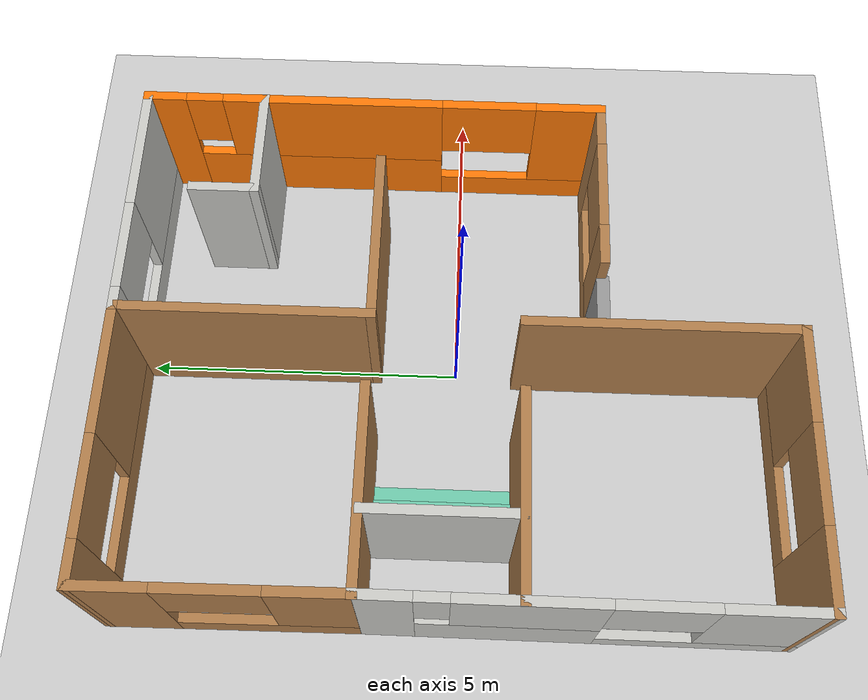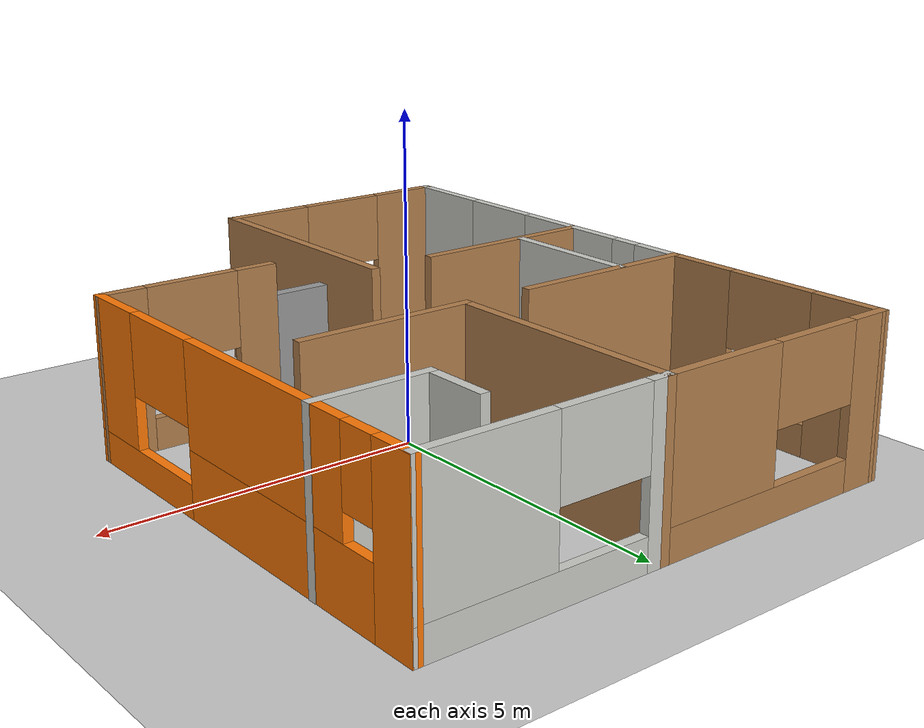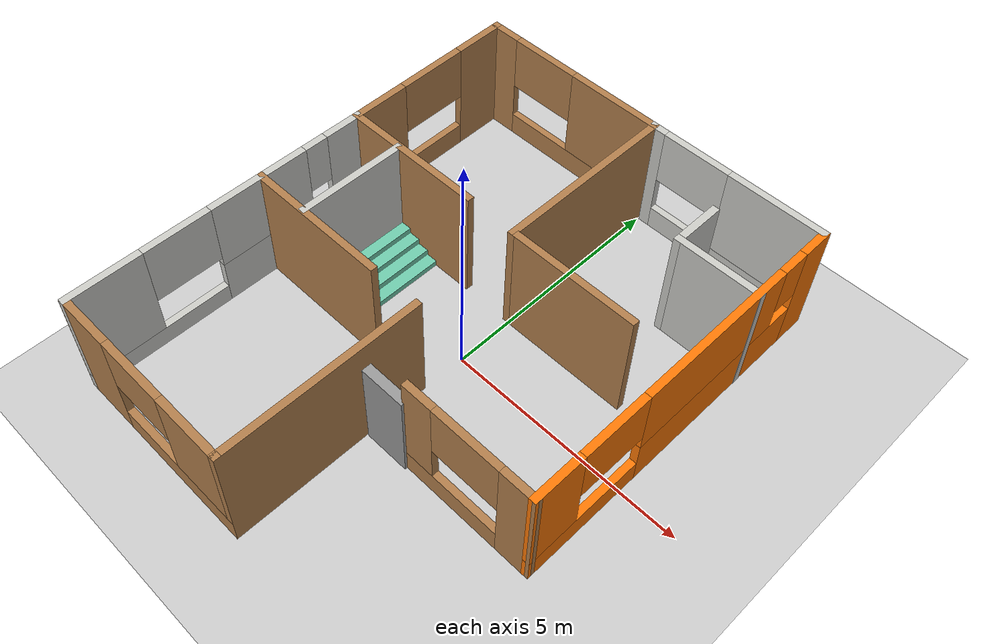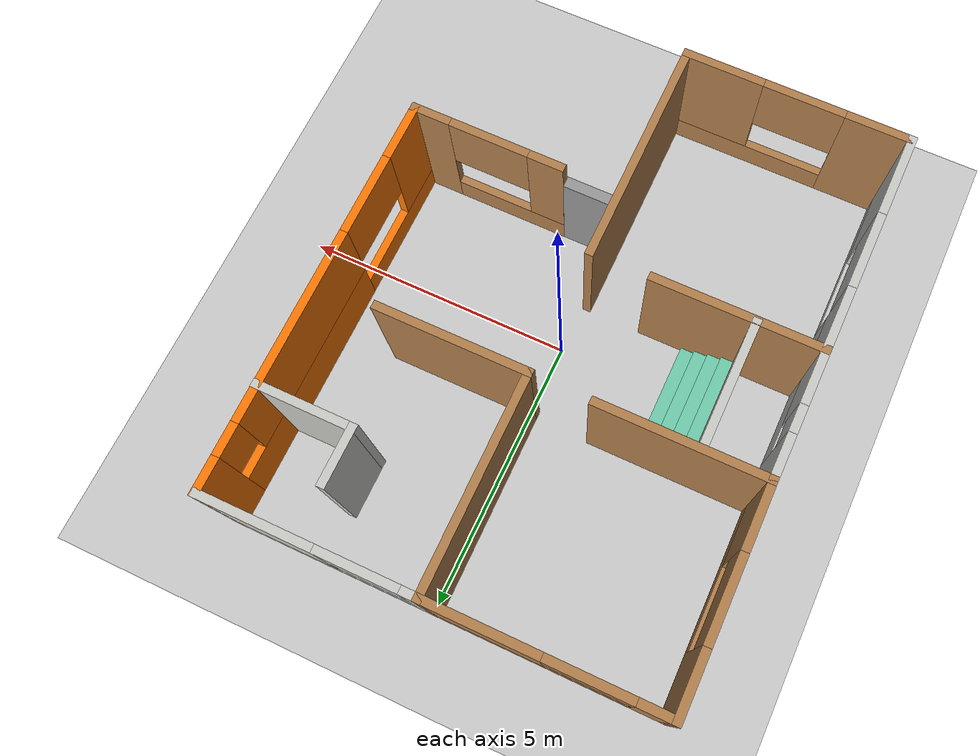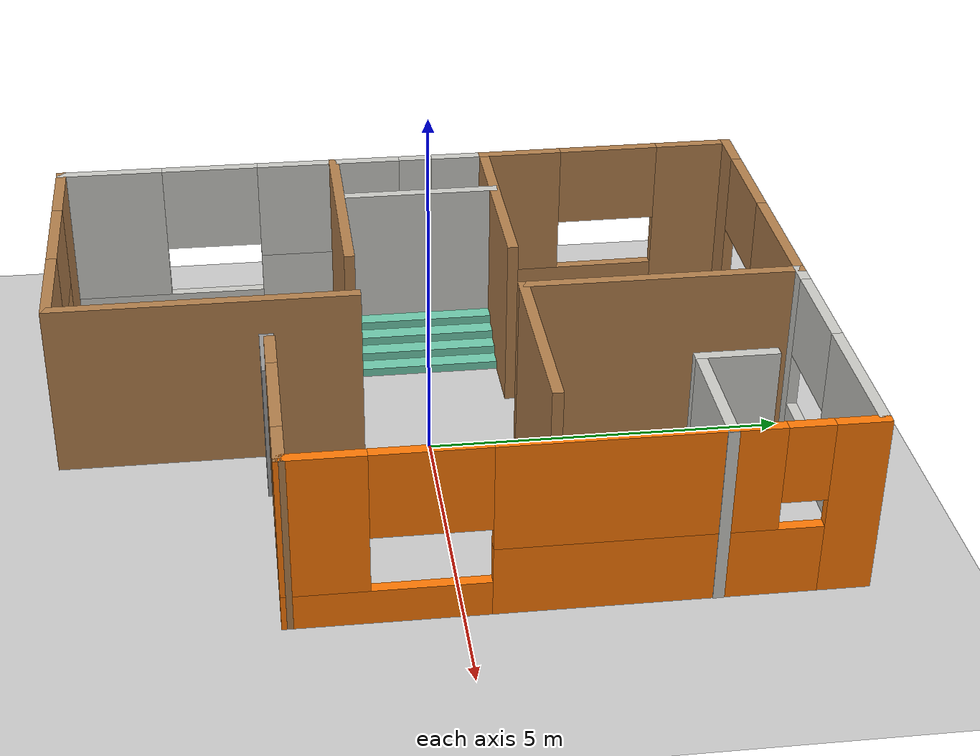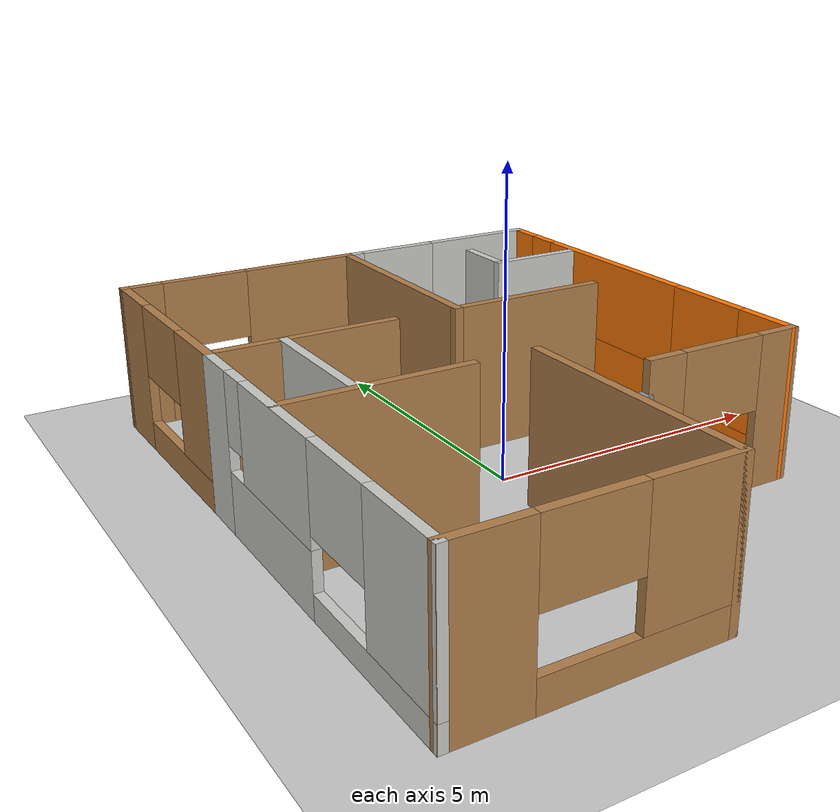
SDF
<sdf version="1.7">
 <world name="default">
  <scene><ambient>0.4 0.4 0.4 1</ambient><background>0.7 0.7 0.7 1</background><shadows>1</shadows></scene>
  <light name="sun" type="directional">
   <pose>0 0 10 0 -0 0</pose>
   <diffuse>0.8 0.8 0.8 1</diffuse>
   <specular>0.2 0.2 0.2 1</specular>
   <attenuation>
    <range>1000</range>
    <constant>0.9</constant>
    <linear>0.01</linear>
    <quadratic>0.001</quadratic>
   </attenuation>
   <direction>-0.5 0.1 -0.9</direction>
   <spot><inner_angle>0</inner_angle><outer_angle>0</outer_angle><falloff>0</falloff></spot>
  </light>
  <model name="ground_plane">
   <static>1</static>
   <link name="link">
    <collision name="collision">
     <geometry><plane><normal>0 0 1</normal><size>100 100</size></plane></geometry>
     <surface>
      <contact><collide_bitmask>65535</collide_bitmask></contact>
      <friction><ode><mu>100</mu><mu2>50</mu2></ode></friction>
     </surface>
    </collision>
    <visual name="visual">
     <cast_shadows>0</cast_shadows>
     <geometry><plane><normal>0 0 1</normal><size>100 100</size></plane></geometry>
     <material>
      <script><uri>file://media/materials/scripts/gazebo.material</uri><name>Gazebo/Grey</name></script>
     </material>
    </visual>
   </link>
  </model>
  <physics type="ode">
   <real_time_update_rate>1000</real_time_update_rate>
   <max_step_size>0.001</max_step_size>
   <real_time_factor>1</real_time_factor>
   <ode>
    <solver>
     <type>quick</type>
     <iters>150</iters>
     <precon_iters>0</precon_iters>
     <sor>1.4</sor>
     <use_dynamic_moi_rescaling>1</use_dynamic_moi_rescaling>
    </solver>
    <constraints>
     <cfm>1e-05</cfm>
     <erp>0.2</erp>
     <contact_max_correcting_vel>2000</contact_max_correcting_vel>
     <contact_surface_layer>0.01</contact_surface_layer>
    </constraints>
   </ode>
  </physics>
  <gravity>0 0 -9.8</gravity>
  <magnetic_field>6e-06 2.3e-05 -4.2e-05</magnetic_field>
  <atmosphere type="adiabatic"/>
  <spherical_coordinates>
   <surface_model>EARTH_WGS84</surface_model>
   <latitude_deg>0</latitude_deg>
   <longitude_deg>0</longitude_deg>
   <elevation>0</elevation>
   <heading_deg>0</heading_deg>
  </spherical_coordinates>
  <model name="Building_1">
   <pose>-0.232797 0.0176 0 0 -0 0</pose>
   <link name="Door_2">
    <collision name="Door_2_Collision">
     <geometry><box><size>0.946 0.2 2</size></box></geometry>
     <pose>0 0 1 0 -0 0</pose>
    </collision>
    <visual name="Door_2_Visual">
     <pose>0 0 1 0 -0 0</pose>
     <geometry><box><size>0.946 0.2 2</size></box></geometry>
     <material>
      <script><uri>file://media/materials/scripts/gazebo.material</uri><name>Gazebo/Grey</name></script>
     </material>
    </visual>
    <pose>0.711317 -2.21727 0 0 -0 0</pose>
   </link>
   <link name="Stairs_2">
    <visual name="Stairs_2_Visual_0">
     <pose>-1.85966 0.13696 0.0625 0 -0 -1.5708</pose>
     <geometry><box><size>2.29011 0.243245 0.125</size></box></geometry>
     <material>
      <script><uri>file://media/materials/scripts/gazebo.material</uri><name>Gazebo/Grey</name></script>
      <ambient>0.435294 0.796078 0.67451 1</ambient>
     </material>
     <meta><layer>0</layer></meta>
    </visual>
    <collision name="Stairs_2_Collision_0">
     <geometry><box><size>2.29011 0.243245 0.125</size></box></geometry>
     <pose>-1.85966 0.13696 0.0625 0 -0 -1.5708</pose>
    </collision>
    <visual name="Stairs_2_Visual_1">
     <pose>-2.1029 0.13696 0.1875 0 -0 -1.5708</pose>
     <geometry><box><size>2.29011 0.243245 0.125</size></box></geometry>
     <material>
      <script><uri>file://media/materials/scripts/gazebo.material</uri><name>Gazebo/Grey</name></script>
      <ambient>0.435294 0.796078 0.67451 1</ambient>
     </material>
     <meta><layer>0</layer></meta>
    </visual>
    <collision name="Stairs_2_Collision_1">
     <geometry><box><size>2.29011 0.243245 0.125</size></box></geometry>
     <pose>-2.1029 0.13696 0.1875 0 -0 -1.5708</pose>
    </collision>
    <visual name="Stairs_2_Visual_2">
     <pose>-2.34615 0.13696 0.3125 0 -0 -1.5708</pose>
     <geometry><box><size>2.29011 0.243245 0.125</size></box></geometry>
     <material>
      <script><uri>file://media/materials/scripts/gazebo.material</uri><name>Gazebo/Grey</name></script>
      <ambient>0.435294 0.796078 0.67451 1</ambient>
     </material>
     <meta><layer>0</layer></meta>
    </visual>
    <collision name="Stairs_2_Collision_2">
     <geometry><box><size>2.29011 0.243245 0.125</size></box></geometry>
     <pose>-2.34615 0.13696 0.3125 0 -0 -1.5708</pose>
    </collision>
    <visual name="Stairs_2_Visual_3">
     <pose>-2.5894 0.13696 0.4375 0 -0 -1.5708</pose>
     <geometry><box><size>2.29011 0.243245 0.125</size></box></geometry>
     <material>
      <script><uri>file://media/materials/scripts/gazebo.material</uri><name>Gazebo/Grey</name></script>
      <ambient>0.435294 0.796078 0.67451 1</ambient>
     </material>
     <meta><layer>0</layer></meta>
    </visual>
    <collision name="Stairs_2_Collision_3">
     <geometry><box><size>2.29011 0.243245 0.125</size></box></geometry>
     <pose>-2.5894 0.13696 0.4375 0 -0 -1.5708</pose>
    </collision>
   </link>
   <link name="Wall_10">
    <pose>-3.94836 3.19688 0 0 -0 -1.56397</pose>
    <visual name="Wall_10_Visual_0">
     <pose>-1.38335 0 1.25 0 -0 0</pose>
     <geometry><box><size>1.18938 0.15 2.5</size></box></geometry>
     <material>
      <script><uri>file://media/materials/scripts/gazebo.material</uri><name>Gazebo/Wood</name></script>
      <ambient>0.996078 0.47451 0.0196078 1</ambient>
     </material>
     <meta><layer>0</layer></meta>
    </visual>
    <collision name="Wall_10_Collision_0">
     <geometry><box><size>1.18938 0.15 2.5</size></box></geometry>
     <pose>-1.38335 0 1.25 0 -0 0</pose>
    </collision>
    <visual name="Wall_10_Visual_1">
     <pose>0.594692 0 0.25 0 -0 0</pose>
     <geometry><box><size>2.76671 0.15 0.5</size></box></geometry>
     <material>
      <script><uri>file://media/materials/scripts/gazebo.material</uri><name>Gazebo/Wood</name></script>
      <ambient>0.996078 0.47451 0.0196078 1</ambient>
     </material>
     <meta><layer>0</layer></meta>
    </visual>
    <collision name="Wall_10_Collision_1">
     <geometry><box><size>2.76671 0.15 0.5</size></box></geometry>
     <pose>0.594692 0 0.25 0 -0 0</pose>
    </collision>
    <visual name="Wall_10_Visual_2">
     <pose>1.34665 0 1.5 0 -0 0</pose>
     <geometry><box><size>1.26278 0.15 2</size></box></geometry>
     <material>
      <script><uri>file://media/materials/scripts/gazebo.material</uri><name>Gazebo/Wood</name></script>
      <ambient>0.996078 0.47451 0.0196078 1</ambient>
     </material>
     <meta><layer>0</layer></meta>
    </visual>
    <collision name="Wall_10_Collision_2">
     <geometry><box><size>1.26278 0.15 2</size></box></geometry>
     <pose>1.34665 0 1.5 0 -0 0</pose>
    </collision>
    <visual name="Wall_10_Visual_3">
     <pose>-0.0367 0 1.9 0 -0 0</pose>
     <geometry><box><size>1.50392 0.15 1.2</size></box></geometry>
     <material>
      <script><uri>file://media/materials/scripts/gazebo.material</uri><name>Gazebo/Wood</name></script>
      <ambient>0.996078 0.47451 0.0196078 1</ambient>
     </material>
     <meta><layer>0</layer></meta>
    </visual>
    <collision name="Wall_10_Collision_3">
     <geometry><box><size>1.50392 0.15 1.2</size></box></geometry>
     <pose>-0.0367 0 1.9 0 -0 0</pose>
    </collision>
   </link>
   <link name="Wall_11">
    <pose>-3.94841 -1.90297 0 0 -0 -1.57488</pose>
    <visual name="Wall_11_Visual_0">
     <pose>-2.83034 0 1.25 0 -0 0</pose>
     <geometry><box><size>0.883609 0.15 2.5</size></box></geometry>
     <material>
      <script><uri>file://media/materials/scripts/gazebo.material</uri><name>Gazebo/CeilingTiled</name></script>
      <ambient>0.996078 0.47451 0.0196078 1</ambient>
     </material>
     <meta><layer>0</layer></meta>
    </visual>
    <collision name="Wall_11_Collision_0">
     <geometry><box><size>0.883609 0.15 2.5</size></box></geometry>
     <pose>-2.83034 0 1.25 0 -0 0</pose>
    </collision>
    <visual name="Wall_11_Visual_1">
     <pose>-1.05993 0 0.5 0 -0 0</pose>
     <geometry><box><size>2.65722 0.15 1</size></box></geometry>
     <material>
      <script><uri>file://media/materials/scripts/gazebo.material</uri><name>Gazebo/CeilingTiled</name></script>
      <ambient>0.996078 0.47451 0.0196078 1</ambient>
     </material>
     <meta><layer>0</layer></meta>
    </visual>
    <collision name="Wall_11_Collision_1">
     <geometry><box><size>2.65722 0.15 1</size></box></geometry>
     <pose>-1.05993 0 0.5 0 -0 0</pose>
    </collision>
    <visual name="Wall_11_Visual_2">
     <pose>1.77042 0 0.2 0 -0 0</pose>
     <geometry><box><size>3.00346 0.15 0.4</size></box></geometry>
     <material>
      <script><uri>file://media/materials/scripts/gazebo.material</uri><name>Gazebo/CeilingTiled</name></script>
      <ambient>0.996078 0.47451 0.0196078 1</ambient>
     </material>
     <meta><layer>0</layer></meta>
    </visual>
    <collision name="Wall_11_Collision_2">
     <geometry><box><size>3.00346 0.15 0.4</size></box></geometry>
     <pose>1.77042 0 0.2 0 -0 0</pose>
    </collision>
    <visual name="Wall_11_Visual_3">
     <pose>2.48542 0 1.45 0 -0 0</pose>
     <geometry><box><size>1.57346 0.15 2.1</size></box></geometry>
     <material>
      <script><uri>file://media/materials/scripts/gazebo.material</uri><name>Gazebo/CeilingTiled</name></script>
      <ambient>0.996078 0.47451 0.0196078 1</ambient>
     </material>
     <meta><layer>0</layer></meta>
    </visual>
    <collision name="Wall_11_Collision_3">
     <geometry><box><size>1.57346 0.15 2.1</size></box></geometry>
     <pose>2.48542 0 1.45 0 -0 0</pose>
    </collision>
    <visual name="Wall_11_Visual_4">
     <pose>-0.809925 0 1.75 0 -0 0</pose>
     <geometry><box><size>2.15722 0.15 1.5</size></box></geometry>
     <material>
      <script><uri>file://media/materials/scripts/gazebo.material</uri><name>Gazebo/CeilingTiled</name></script>
      <ambient>0.996078 0.47451 0.0196078 1</ambient>
     </material>
     <meta><layer>0</layer></meta>
    </visual>
    <collision name="Wall_11_Collision_4">
     <geometry><box><size>2.15722 0.15 1.5</size></box></geometry>
     <pose>-0.809925 0 1.75 0 -0 0</pose>
    </collision>
    <visual name="Wall_11_Visual_5">
     <pose>0.983687 0 1.85 0 -0 0</pose>
     <geometry><box><size>1.43 0.15 1.3</size></box></geometry>
     <material>
      <script><uri>file://media/materials/scripts/gazebo.material</uri><name>Gazebo/CeilingTiled</name></script>
      <ambient>0.996078 0.47451 0.0196078 1</ambient>
     </material>
     <meta><layer>0</layer></meta>
    </visual>
    <collision name="Wall_11_Collision_5">
     <geometry><box><size>1.43 0.15 1.3</size></box></geometry>
     <pose>0.983687 0 1.85 0 -0 0</pose>
    </collision>
    <visual name="Wall_11_Visual_6">
     <pose>-2.13854 0 1.95 0 -0 0</pose>
     <geometry><box><size>0.5 0.15 1.1</size></box></geometry>
     <material>
      <script><uri>file://media/materials/scripts/gazebo.material</uri><name>Gazebo/CeilingTiled</name></script>
      <ambient>0.996078 0.47451 0.0196078 1</ambient>
     </material>
     <meta><layer>0</layer></meta>
    </visual>
    <collision name="Wall_11_Collision_6">
     <geometry><box><size>0.5 0.15 1.1</size></box></geometry>
     <pose>-2.13854 0 1.95 0 -0 0</pose>
    </collision>
   </link>
   <link name="Wall_12">
    <pose>-1.91146 -5.09982 0 0 -0 0</pose>
    <visual name="Wall_12_Visual_0">
     <pose>-1.49847 0 1.25 0 -0 0</pose>
     <geometry><box><size>1.25307 0.15 2.5</size></box></geometry>
     <material>
      <script><uri>file://media/materials/scripts/gazebo.material</uri><name>Gazebo/Wood</name></script>
      <ambient>0.996078 0.47451 0.0196078 1</ambient>
     </material>
     <meta><layer>0</layer></meta>
    </visual>
    <collision name="Wall_12_Collision_0">
     <geometry><box><size>1.25307 0.15 2.5</size></box></geometry>
     <pose>-1.49847 0 1.25 0 -0 0</pose>
    </collision>
    <visual name="Wall_12_Visual_1">
     <pose>0.626533 0 0.25 0 -0 0</pose>
     <geometry><box><size>2.99693 0.15 0.5</size></box></geometry>
     <material>
      <script><uri>file://media/materials/scripts/gazebo.material</uri><name>Gazebo/Wood</name></script>
      <ambient>0.996078 0.47451 0.0196078 1</ambient>
     </material>
     <meta><layer>0</layer></meta>
    </visual>
    <collision name="Wall_12_Collision_1">
     <geometry><box><size>2.99693 0.15 0.5</size></box></geometry>
     <pose>0.626533 0 0.25 0 -0 0</pose>
    </collision>
    <visual name="Wall_12_Visual_2">
     <pose>1.36953 0 1.5 0 -0 0</pose>
     <geometry><box><size>1.51095 0.15 2</size></box></geometry>
     <material>
      <script><uri>file://media/materials/scripts/gazebo.material</uri><name>Gazebo/Wood</name></script>
      <ambient>0.996078 0.47451 0.0196078 1</ambient>
     </material>
     <meta><layer>0</layer></meta>
    </visual>
    <collision name="Wall_12_Collision_2">
     <geometry><box><size>1.51095 0.15 2</size></box></geometry>
     <pose>1.36953 0 1.5 0 -0 0</pose>
    </collision>
    <visual name="Wall_12_Visual_3">
     <pose>-0.128941 0 1.9 0 -0 0</pose>
     <geometry><box><size>1.48599 0.15 1.2</size></box></geometry>
     <material>
      <script><uri>file://media/materials/scripts/gazebo.material</uri><name>Gazebo/Wood</name></script>
      <ambient>0.996078 0.47451 0.0196078 1</ambient>
     </material>
     <meta><layer>0</layer></meta>
    </visual>
    <collision name="Wall_12_Collision_3">
     <geometry><box><size>1.48599 0.15 1.2</size></box></geometry>
     <pose>-0.128941 0 1.9 0 -0 0</pose>
    </collision>
   </link>
   <link name="Wall_13">
    <collision name="Wall_13_Collision">
     <geometry><box><size>4.25 0.15 2.5</size></box></geometry>
     <pose>0 0 1.25 0 -0 0</pose>
    </collision>
    <visual name="Wall_13_Visual">
     <pose>0 0 1.25 0 -0 0</pose>
     <geometry><box><size>4.25 0.15 2.5</size></box></geometry>
     <material>
      <script><uri>file://media/materials/scripts/gazebo.material</uri><name>Gazebo/Wood</name></script>
      <ambient>0.996078 0.47451 0.0196078 1</ambient>
     </material>
     <meta><layer>0</layer></meta>
    </visual>
    <pose>0.138544 -3.04982 0 0 -0 1.5708</pose>
   </link>
   <link name="Wall_15">
    <collision name="Wall_15_Collision">
     <geometry><box><size>3.12449 0.15 2.5</size></box></geometry>
     <pose>0 0 1.25 0 -0 0</pose>
    </collision>
    <visual name="Wall_15_Visual">
     <pose>0 0 1.25 0 -0 0</pose>
     <geometry><box><size>3.12449 0.15 2.5</size></box></geometry>
     <material>
      <script><uri>file://media/materials/scripts/gazebo.material</uri><name>Gazebo/Wood</name></script>
      <ambient>0.996078 0.47451 0.0196078 1</ambient>
     </material>
     <meta><layer>0</layer></meta>
    </visual>
    <pose>-2.44812 1.29374 0 0 -0 -9.2e-05</pose>
   </link>
   <link name="Wall_17">
    <collision name="Wall_17_Collision">
     <geometry><box><size>2.83504 0.15 2.5</size></box></geometry>
     <pose>0 0 1.25 0 -0 0</pose>
    </collision>
    <visual name="Wall_17_Visual">
     <pose>0 0 1.25 0 -0 0</pose>
     <geometry><box><size>2.83504 0.15 2.5</size></box></geometry>
     <material>
      <script><uri>file://media/materials/scripts/gazebo.material</uri><name>Gazebo/Wood</name></script>
      <ambient>0.996078 0.47451 0.0196078 1</ambient>
     </material>
     <meta><layer>0</layer></meta>
    </visual>
    <pose>1.51797 1.27963 0 0 -0 -3.14103</pose>
   </link>
   <link name="Wall_18">
    <collision name="Wall_18_Collision">
     <geometry><box><size>3.97135 0.15 2.5</size></box></geometry>
     <pose>0 0 1.25 0 -0 0</pose>
    </collision>
    <visual name="Wall_18_Visual">
     <pose>0 0 1.25 0 -0 0</pose>
     <geometry><box><size>3.97135 0.15 2.5</size></box></geometry>
     <material>
      <script><uri>file://media/materials/scripts/gazebo.material</uri><name>Gazebo/Wood</name></script>
      <ambient>0.996078 0.47451 0.0196078 1</ambient>
     </material>
     <meta><layer>0</layer></meta>
    </visual>
    <pose>0.175637 3.18938 0 0 -0 1.5708</pose>
   </link>
   <link name="Wall_20">
    <collision name="Wall_20_Collision">
     <geometry><box><size>1.83902 0.15 2.5</size></box></geometry>
     <pose>0 0 1.25 0 -0 0</pose>
    </collision>
    <visual name="Wall_20_Visual">
     <pose>0 0 1.25 0 -0 0</pose>
     <geometry><box><size>1.83902 0.15 2.5</size></box></geometry>
     <material>
      <script><uri>file://media/materials/scripts/gazebo.material</uri><name>Gazebo/CeilingTiled</name></script>
      <ambient>0.996078 0.47451 0.0196078 1</ambient>
     </material>
     <meta><layer>0</layer></meta>
    </visual>
    <pose>3.11736 3.21456 0 0 -0 3.14159</pose>
   </link>
   <link name="Wall_21">
    <collision name="Wall_21_Collision">
     <geometry><box><size>1.11082 0.15 2.5</size></box></geometry>
     <pose>0 0 1.25 0 -0 0</pose>
    </collision>
    <visual name="Wall_21_Visual">
     <pose>0 0 1.25 0 -0 0</pose>
     <geometry><box><size>1.11082 0.15 2.5</size></box></geometry>
     <material>
      <script><uri>file://media/materials/scripts/gazebo.material</uri><name>Gazebo/CeilingTiled</name></script>
      <ambient>0.996078 0.47451 0.0196078 1</ambient>
     </material>
     <meta><layer>0</layer></meta>
    </visual>
    <pose>2.27285 3.69497 0 0 -0 1.5708</pose>
   </link>
   <link name="Wall_23">
    <collision name="Wall_23_Collision">
     <geometry><box><size>3.1252 0.15 2.5</size></box></geometry>
     <pose>0 0 1.25 0 -0 0</pose>
    </collision>
    <visual name="Wall_23_Visual">
     <pose>0 0 1.25 0 -0 0</pose>
     <geometry><box><size>3.1252 0.15 2.5</size></box></geometry>
     <material>
      <script><uri>file://media/materials/scripts/gazebo.material</uri><name>Gazebo/Wood</name></script>
      <ambient>0.996078 0.47451 0.0196078 1</ambient>
     </material>
     <meta><layer>0</layer></meta>
    </visual>
    <pose>-2.45307 -1.0034 0 0 -0 0.001625</pose>
   </link>
   <link name="Wall_25">
    <collision name="Wall_25_Collision">
     <geometry><box><size>2.38442 0.15 2.5</size></box></geometry>
     <pose>0 0 1.25 0 -0 0</pose>
    </collision>
    <visual name="Wall_25_Visual">
     <pose>0 0 1.25 0 -0 0</pose>
     <geometry><box><size>2.38442 0.15 2.5</size></box></geometry>
     <material>
      <script><uri>file://media/materials/scripts/gazebo.material</uri><name>Gazebo/CeilingTiled</name></script>
      <ambient>0.996078 0.47451 0.0196078 1</ambient>
     </material>
     <meta><layer>0</layer></meta>
    </visual>
    <pose>-2.76936 0.143883 0 0 -0 -1.5708</pose>
   </link>
   <link name="Wall_5">
    <pose>-1.89286 5.09988 0 0 -0 0</pose>
    <visual name="Wall_5_Visual_0">
     <pose>-1.79142 0 1.25 0 -0 0</pose>
     <geometry><box><size>0.704245 0.15 2.5</size></box></geometry>
     <material>
      <script><uri>file://media/materials/scripts/gazebo.material</uri><name>Gazebo/Wood</name></script>
      <ambient>0.996078 0.47451 0.0196078 1</ambient>
     </material>
     <meta><layer>0</layer></meta>
    </visual>
    <collision name="Wall_5_Collision_0">
     <geometry><box><size>0.704245 0.15 2.5</size></box></geometry>
     <pose>-1.79142 0 1.25 0 -0 0</pose>
    </collision>
    <visual name="Wall_5_Visual_1">
     <pose>0.352122 0 0.25 0 -0 0</pose>
     <geometry><box><size>3.58285 0.15 0.5</size></box></geometry>
     <material>
      <script><uri>file://media/materials/scripts/gazebo.material</uri><name>Gazebo/Wood</name></script>
      <ambient>0.996078 0.47451 0.0196078 1</ambient>
     </material>
     <meta><layer>0</layer></meta>
    </visual>
    <collision name="Wall_5_Collision_1">
     <geometry><box><size>3.58285 0.15 0.5</size></box></geometry>
     <pose>0.352122 0 0.25 0 -0 0</pose>
    </collision>
    <visual name="Wall_5_Visual_2">
     <pose>1.10307 0 1.5 0 -0 0</pose>
     <geometry><box><size>2.08095 0.15 2</size></box></geometry>
     <material>
      <script><uri>file://media/materials/scripts/gazebo.material</uri><name>Gazebo/Wood</name></script>
      <ambient>0.996078 0.47451 0.0196078 1</ambient>
     </material>
     <meta><layer>0</layer></meta>
    </visual>
    <collision name="Wall_5_Collision_2">
     <geometry><box><size>2.08095 0.15 2</size></box></geometry>
     <pose>1.10307 0 1.5 0 -0 0</pose>
    </collision>
    <visual name="Wall_5_Visual_3">
     <pose>-0.688351 0 1.9 0 -0 0</pose>
     <geometry><box><size>1.5019 0.15 1.2</size></box></geometry>
     <material>
      <script><uri>file://media/materials/scripts/gazebo.material</uri><name>Gazebo/Wood</name></script>
      <ambient>0.996078 0.47451 0.0196078 1</ambient>
     </material>
     <meta><layer>0</layer></meta>
    </visual>
    <collision name="Wall_5_Collision_3">
     <geometry><box><size>1.5019 0.15 1.2</size></box></geometry>
     <pose>-0.688351 0 1.9 0 -0 0</pose>
    </collision>
   </link>
   <link name="Wall_6">
    <pose>2.05895 5.10003 0 0 -0 7.8e-05</pose>
    <visual name="Wall_6_Visual_0">
     <pose>-1.76877 0 1.25 0 -0 0</pose>
     <geometry><box><size>0.379085 0.15 2.5</size></box></geometry>
     <material>
      <script><uri>file://media/materials/scripts/gazebo.material</uri><name>Gazebo/CeilingTiled</name></script>
      <ambient>0.996078 0.47451 0.0196078 1</ambient>
     </material>
     <meta><layer>0</layer></meta>
    </visual>
    <collision name="Wall_6_Collision_0">
     <geometry><box><size>0.379085 0.15 2.5</size></box></geometry>
     <pose>-1.76877 0 1.25 0 -0 0</pose>
    </collision>
    <visual name="Wall_6_Visual_1">
     <pose>0.189542 0 0.25 0 -0 0</pose>
     <geometry><box><size>3.53754 0.15 0.5</size></box></geometry>
     <material>
      <script><uri>file://media/materials/scripts/gazebo.material</uri><name>Gazebo/CeilingTiled</name></script>
      <ambient>0.996078 0.47451 0.0196078 1</ambient>
     </material>
     <meta><layer>0</layer></meta>
    </visual>
    <collision name="Wall_6_Collision_1">
     <geometry><box><size>3.53754 0.15 0.5</size></box></geometry>
     <pose>0.189542 0 0.25 0 -0 0</pose>
    </collision>
    <visual name="Wall_6_Visual_2">
     <pose>0.917476 0 1.5 0 -0 0</pose>
     <geometry><box><size>2.08167 0.15 2</size></box></geometry>
     <material>
      <script><uri>file://media/materials/scripts/gazebo.material</uri><name>Gazebo/CeilingTiled</name></script>
      <ambient>0.996078 0.47451 0.0196078 1</ambient>
     </material>
     <meta><layer>0</layer></meta>
    </visual>
    <collision name="Wall_6_Collision_2">
     <geometry><box><size>2.08167 0.15 2</size></box></geometry>
     <pose>0.917476 0 1.5 0 -0 0</pose>
    </collision>
    <visual name="Wall_6_Visual_3">
     <pose>-0.851292 0 1.9 0 -0 0</pose>
     <geometry><box><size>1.45587 0.15 1.2</size></box></geometry>
     <material>
      <script><uri>file://media/materials/scripts/gazebo.material</uri><name>Gazebo/CeilingTiled</name></script>
      <ambient>0.996078 0.47451 0.0196078 1</ambient>
     </material>
     <meta><layer>0</layer></meta>
    </visual>
    <collision name="Wall_6_Collision_3">
     <geometry><box><size>1.45587 0.15 1.2</size></box></geometry>
     <pose>-0.851292 0 1.9 0 -0 0</pose>
    </collision>
   </link>
   <link name="Wall_7">
    <pose>3.95222 1.45148 0 0 -0 -1.57169</pose>
    <visual name="Wall_7_Visual_0">
     <pose>-3.37546 0 1.25 0 -0 0</pose>
     <geometry><box><size>0.696483 0.15 2.5</size></box></geometry>
     <material>
      <script><uri>file://media/materials/scripts/gazebo.material</uri><name>Gazebo/Grey</name></script>
      <ambient>0.996078 0.47451 0.0196078 1</ambient>
     </material>
     <meta><layer>0</layer></meta>
    </visual>
    <collision name="Wall_7_Collision_0">
     <geometry><box><size>0.696483 0.15 2.5</size></box></geometry>
     <pose>-3.37546 0 1.25 0 -0 0</pose>
    </collision>
    <visual name="Wall_7_Visual_1">
     <pose>-0.960317 0 0.5 0 -0 0</pose>
     <geometry><box><size>4.1338 0.15 1</size></box></geometry>
     <material>
      <script><uri>file://media/materials/scripts/gazebo.material</uri><name>Gazebo/Grey</name></script>
      <ambient>0.996078 0.47451 0.0196078 1</ambient>
     </material>
     <meta><layer>0</layer></meta>
    </visual>
    <collision name="Wall_7_Collision_1">
     <geometry><box><size>4.1338 0.15 1</size></box></geometry>
     <pose>-0.960317 0 0.5 0 -0 0</pose>
    </collision>
    <visual name="Wall_7_Visual_2">
     <pose>2.41514 0 0.25 0 -0 0</pose>
     <geometry><box><size>2.61712 0.15 0.5</size></box></geometry>
     <material>
      <script><uri>file://media/materials/scripts/gazebo.material</uri><name>Gazebo/Grey</name></script>
      <ambient>0.996078 0.47451 0.0196078 1</ambient>
     </material>
     <meta><layer>0</layer></meta>
    </visual>
    <collision name="Wall_7_Collision_2">
     <geometry><box><size>2.61712 0.15 0.5</size></box></geometry>
     <pose>2.41514 0 0.25 0 -0 0</pose>
    </collision>
    <visual name="Wall_7_Visual_3">
     <pose>3.16678 0 1.5 0 -0 0</pose>
     <geometry><box><size>1.11384 0.15 2</size></box></geometry>
     <material>
      <script><uri>file://media/materials/scripts/gazebo.material</uri><name>Gazebo/Grey</name></script>
      <ambient>0.996078 0.47451 0.0196078 1</ambient>
     </material>
     <meta><layer>0</layer></meta>
    </visual>
    <collision name="Wall_7_Collision_3">
     <geometry><box><size>1.11384 0.15 2</size></box></geometry>
     <pose>3.16678 0 1.5 0 -0 0</pose>
    </collision>
    <visual name="Wall_7_Visual_4">
     <pose>-0.665817 0 1.75 0 -0 0</pose>
     <geometry><box><size>3.5448 0.15 1.5</size></box></geometry>
     <material>
      <script><uri>file://media/materials/scripts/gazebo.material</uri><name>Gazebo/Grey</name></script>
      <ambient>0.996078 0.47451 0.0196078 1</ambient>
     </material>
     <meta><layer>0</layer></meta>
    </visual>
    <collision name="Wall_7_Collision_4">
     <geometry><box><size>3.5448 0.15 1.5</size></box></geometry>
     <pose>-0.665817 0 1.75 0 -0 0</pose>
    </collision>
    <visual name="Wall_7_Visual_5">
     <pose>1.85822 0 1.9 0 -0 0</pose>
     <geometry><box><size>1.50328 0.15 1.2</size></box></geometry>
     <material>
      <script><uri>file://media/materials/scripts/gazebo.material</uri><name>Gazebo/Grey</name></script>
      <ambient>0.996078 0.47451 0.0196078 1</ambient>
     </material>
     <meta><layer>0</layer></meta>
    </visual>
    <collision name="Wall_7_Collision_5">
     <geometry><box><size>1.50328 0.15 1.2</size></box></geometry>
     <pose>1.85822 0 1.9 0 -0 0</pose>
    </collision>
    <visual name="Wall_7_Visual_6">
     <pose>-2.73272 0 1.95 0 -0 0</pose>
     <geometry><box><size>0.589 0.15 1.1</size></box></geometry>
     <material>
      <script><uri>file://media/materials/scripts/gazebo.material</uri><name>Gazebo/Grey</name></script>
      <ambient>0.996078 0.47451 0.0196078 1</ambient>
     </material>
     <meta><layer>0</layer></meta>
    </visual>
    <collision name="Wall_7_Collision_6">
     <geometry><box><size>0.589 0.15 1.1</size></box></geometry>
     <pose>-2.73272 0 1.95 0 -0 0</pose>
    </collision>
   </link>
   <link name="Wall_8">
    <pose>2.58197 -2.19385 0 0 -0 3.13913</pose>
    <visual name="Wall_8_Visual_0">
     <pose>-1.06812 0 1.25 0 -0 0</pose>
     <geometry><box><size>0.747768 0.15 2.5</size></box></geometry>
     <material>
      <script><uri>file://media/materials/scripts/gazebo.material</uri><name>Gazebo/Wood</name></script>
      <ambient>0.996078 0.47451 0.0196078 1</ambient>
     </material>
     <meta><layer>0</layer></meta>
    </visual>
    <collision name="Wall_8_Collision_0">
     <geometry><box><size>0.747768 0.15 2.5</size></box></geometry>
     <pose>-1.06812 0 1.25 0 -0 0</pose>
    </collision>
    <visual name="Wall_8_Visual_1">
     <pose>0.373884 0 0.25 0 -0 0</pose>
     <geometry><box><size>2.13623 0.15 0.5</size></box></geometry>
     <material>
      <script><uri>file://media/materials/scripts/gazebo.material</uri><name>Gazebo/Wood</name></script>
      <ambient>0.996078 0.47451 0.0196078 1</ambient>
     </material>
     <meta><layer>0</layer></meta>
    </visual>
    <collision name="Wall_8_Collision_1">
     <geometry><box><size>2.13623 0.15 0.5</size></box></geometry>
     <pose>0.373884 0 0.25 0 -0 0</pose>
    </collision>
    <visual name="Wall_8_Visual_2">
     <pose>1.1075 0 1.5 0 -0 0</pose>
     <geometry><box><size>0.669006 0.15 2</size></box></geometry>
     <material>
      <script><uri>file://media/materials/scripts/gazebo.material</uri><name>Gazebo/Wood</name></script>
      <ambient>0.996078 0.47451 0.0196078 1</ambient>
     </material>
     <meta><layer>0</layer></meta>
    </visual>
    <collision name="Wall_8_Collision_2">
     <geometry><box><size>0.669006 0.15 2</size></box></geometry>
     <pose>1.1075 0 1.5 0 -0 0</pose>
    </collision>
    <visual name="Wall_8_Visual_3">
     <pose>0.039381 0 1.9 0 -0 0</pose>
     <geometry><box><size>1.46723 0.15 1.2</size></box></geometry>
     <material>
      <script><uri>file://media/materials/scripts/gazebo.material</uri><name>Gazebo/Wood</name></script>
      <ambient>0.996078 0.47451 0.0196078 1</ambient>
     </material>
     <meta><layer>0</layer></meta>
    </visual>
    <collision name="Wall_8_Collision_3">
     <geometry><box><size>1.46723 0.15 1.2</size></box></geometry>
     <pose>0.039381 0 1.9 0 -0 0</pose>
    </collision>
   </link>
   <static>1</static>
  </model>
 </world>
</sdf>
